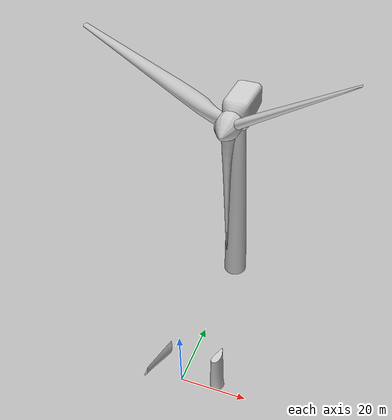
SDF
<sdf version="1.9">
 <world name="turbine_playground">
  <physics name="1ms" type="ignore">
   <max_step_size>0.001</max_step_size>
   <real_time_factor>1.0</real_time_factor>
  </physics>
  <plugin filename="gz-sim-physics-system" name="gz::sim::systems::Physics"/>
  <plugin filename="gz-sim-sensors-system" name="gz::sim::systems::Sensors">
   <render_engine>ogre2</render_engine>
  </plugin>
  <plugin filename="gz-sim-user-commands-system" name="gz::sim::systems::UserCommands"/>
  <plugin filename="gz-sim-scene-broadcaster-system" name="gz::sim::systems::SceneBroadcaster"/>
  <plugin filename="gz-sim-imu-system" name="gz::sim::systems::Imu"/>
  <plugin filename="gz-sim-navsat-system" name="gz::sim::systems::NavSat"/>
  <scene><ambient>1.0 1.0 1.0</ambient><background>0.8 0.8 0.8</background></scene>
  <spherical_coordinates>
   <latitude_deg>-35.363262</latitude_deg>
   <longitude_deg>149.165237</longitude_deg>
   <elevation>584</elevation>
   <heading_deg>0</heading_deg>
   <surface_model>EARTH_WGS84</surface_model>
  </spherical_coordinates>
  <light type="directional" name="sun">
   <pose>0 0 10 0 0 0</pose>
   <diffuse>0.8 0.8 0.8 1</diffuse>
   <specular>0.8 0.8 0.8 1</specular>
   <attenuation>
    <range>1000</range>
    <constant>0.9</constant>
    <linear>0.01</linear>
    <quadratic>0.001</quadratic>
   </attenuation>
   <direction>-0.5 0.1 -0.9</direction>
  </light>
  <model name="axes">
   <static>1</static>
   <link name="link">
    <sensor name="navsat_sensor" type="navsat"><always_on>1</always_on><update_rate>1</update_rate></sensor>
   </link>
  </model>
  <include><uri>model://wind_turbine</uri><pose degrees="true">0 50 0 0 0 0</pose></include>
  <include><uri>model://blade_root</uri><pose degrees="true">10 0 0 0 0 90</pose></include>
  <include><uri>model://blade_tip</uri><pose degrees="true">-10 10 -5 0 -60 90</pose></include>
 </world>
</sdf>

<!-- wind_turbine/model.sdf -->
<sdf version='1.9'>
  <model name='wind_turbine'>
  <static>true</static>
    <link name='tower_link'>
      <collision name="tower_collision">
        <geometry>
          <mesh>
            <uri>model://wind_turbine/meshes/tower.stl</uri>
            <scale> 0.25 0.25 0.25 </scale>
          </mesh>
        </geometry>
      </collision>
      <visual name="tower_visual">
        <geometry>
          <mesh>
            <uri>model://wind_turbine/meshes/tower.stl</uri>
            <scale> 0.25 0.25 0.25 </scale>
          </mesh>
        </geometry>
        <material>
          <ambient>0.8 0.8 0.8 1</ambient>
          <diffuse>0.8 0.8 0.8 1</diffuse>
          <specular>1.0 1.0 1.0 1.0</specular>
        </material>
      </visual>
    </link>

    <link name="generator_link">
      <pose relative_to="tower_link">0 0 66.25 0 0 1.57</pose>
      <collision name="generator_collision">
        <geometry>
          <box>
            <size>17.625 8 9.5</size>
          </box>
        </geometry>
      </collision>
      <visual name="generator_visual">
        <geometry>
          <mesh>
            <uri>model://wind_turbine/meshes/generator.stl</uri>
            <scale> 0.25 0.25 0.25 </scale>
          </mesh>
        </geometry>
        <material>
          <ambient>0.8 0.8 0.8 1</ambient>
          <diffuse>0.8 0.8 0.8 1</diffuse>
          <specular>1.0 1.0 1.0 1.0</specular>
        </material>
      </visual>
    </link>

    <link name="hub_link">
      <pose relative_to="generator_link">-11.18 0 0 0 0 0</pose>
      <collision name="hub_collision">
        <geometry>
          <cylinder>
            <radius> 3.75 </radius>
            <length> 9.375 </length>
          </cylinder>
        </geometry>
      </collision>
      <visual name="hub_visual">
      <geometry>
          <mesh>
            <uri>model://wind_turbine/meshes/hub.stl</uri>
            <scale> 0.25 0.25 0.25 </scale>
          </mesh>
        </geometry>
        <material>
          <ambient>0.8 0.8 0.8 1</ambient>
          <diffuse>0.8 0.8 0.8 1</diffuse>
          <specular>1.0 1.0 1.0 1.0</specular>
        </material>
      </visual>
    </link>

    <link name='blade1_link'>
    <pose relative_to="hub_link">0 0 -3.75 0 0 0</pose>
      <collision name="blade1_collision">
        <geometry>
          <mesh>
            <uri>model://wind_turbine/meshes/blade.stl</uri>
            <scale> 0.25 0.25 0.25 </scale>
          </mesh>
        </geometry>
      </collision>
      <visual name="blade1_visual">
        <geometry>
          <mesh>
            <uri>model://wind_turbine/meshes/blade.stl</uri>
            <scale> 0.25 0.25 0.25 </scale>
          </mesh>
        </geometry>
        <material>
          <ambient>0.8 0.8 0.8 1</ambient>
          <diffuse>0.8 0.8 0.8 1</diffuse>
          <specular>1.0 1.0 1.0 1.0</specular>
        </material>
      </visual>
    </link>

    <link name='blade2_link'>
    <pose relative_to="hub_link">0 3.2476 1.875 2.0944 0 0</pose>
      <collision name="blade2_collision">
        <geometry>
          <mesh>
            <uri>model://wind_turbine/meshes/blade.stl</uri>
            <scale> 0.25 0.25 0.25 </scale>
          </mesh>
        </geometry>
      </collision>
      <visual name="blade2_visual">
        <geometry>
          <mesh>
            <uri>model://wind_turbine/meshes/blade.stl</uri>
            <scale> 0.25 0.25 0.25 </scale>
          </mesh>
        </geometry>
        <material>
          <ambient>0.8 0.8 0.8 1</ambient>
          <diffuse>0.8 0.8 0.8 1</diffuse>
          <specular>1.0 1.0 1.0 1.0</specular>
        </material>
      </visual>
    </link>

    <link name='blade3_link'>
    <pose relative_to="hub_link">0 3.2476 -1.875 -2.0944 0 0</pose>
      <collision name="blade3_collision">
        <geometry>
          <mesh>
            <uri>model://wind_turbine/meshes/blade.stl</uri>
            <scale> 0.25 0.25 0.25 </scale>
          </mesh>
        </geometry>
      </collision>
      <visual name="blade3_visual">
        <geometry>
          <mesh>
            <uri>model://wind_turbine/meshes/blade.stl</uri>
            <scale> 0.25 0.25 0.25 </scale>
          </mesh>
        </geometry>
        <material>
          <ambient>0.8 0.8 0.8 1</ambient>
          <diffuse>0.8 0.8 0.8 1</diffuse>
          <specular>1.0 1.0 1.0 1.0</specular>
        </material>
      </visual>
    </link>

  </model>
</sdf>

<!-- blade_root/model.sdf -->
<sdf version='1.9'>
  <model name='blade_root'>
  <static>true</static>
    <link name='blade_link'>
        <velocity_decay>
            <linear>1000000</linear>  <!-- Higher values mean more damping, hence slower max speed -->
            <angular>1000000</angular>
        </velocity_decay>
        <self_collide>true</self_collide>
        <inertial>
            <mass>1000000</mass>
            <inertia>
              <ixx>1000000</ixx>
              <iyy>1000000</iyy>
              <izz>1000000</izz>
            </inertia>
          </inertial>
      <collision name="blade_collision">
        <geometry>
          <mesh>
            <uri>model://blade_root/meshes/blade_root.stl</uri>
            <scale> 0.25 0.25 0.25 </scale>
          </mesh>
        </geometry>
        <surface>
            <friction>
                <ode>
                    <mu>
                        50.0
                    </mu>
                    <mu2>
                        50.0
                    </mu2>
                </ode>
            </friction>
            <contact>
              <ode>
                <max_vel>0</max_vel>
                <min_depth>0.01</min_depth>
              </ode>
            </contact>
          </surface>
      </collision>
      <visual name="blade1_visual">
        <geometry>
          <mesh>
            <uri>model://blade_root/meshes/blade_root.stl</uri>
            <scale> 0.25 0.25 0.25 </scale>
          </mesh>
        </geometry>
        <material>
          <ambient>0.8 0.8 0.8 1</ambient>
          <diffuse>0.8 0.8 0.8 1</diffuse>
          <specular>1.0 1.0 1.0 1.0</specular>
        </material>
      </visual>
    </link>
  </model>
</sdf>

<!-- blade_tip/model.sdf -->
<sdf version='1.9'>
  <model name='blade_tip'>
  <static>true</static>
    <link name='blade_link'>
      <collision name="blade_collision">
        <geometry>
          <mesh>
            <uri>model://blade_tip/meshes/blade_tip.stl</uri>
            <scale> 0.25 0.25 0.25 </scale>
          </mesh>
        </geometry>
      </collision>
      <visual name="blade_visual">
        <geometry>
          <mesh>
            <uri>model://blade_tip/meshes/blade_tip.stl</uri>
            <scale> 0.25 0.25 0.25 </scale>
          </mesh>
        </geometry>
        <material>
          <ambient>0.8 0.8 0.8 1</ambient>
          <diffuse>0.8 0.8 0.8 1</diffuse>
          <specular>1.0 1.0 1.0 1.0</specular>
        </material>
      </visual>
    </link>
  </model>
</sdf>
